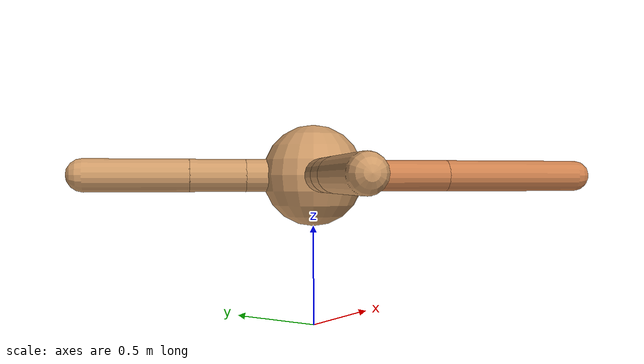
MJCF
<mujoco model="ant">
  <compiler angle="degree" coordinate="local" inertiafromgeom="true" />
  <option integrator="RK4" timestep="0.01" />
  <custom>
    <numeric data="0.0 0.0 0.55 1.0 0.0 0.0 0.0 0.0 1.0 0.0 -1.0 0.0 -1.0 0.0 1.0" name="init_qpos" />
  </custom>
  <default>
    <joint armature="1" damping="1" limited="true" />
    <geom conaffinity="0" condim="3" density="5.0" friction="1.5 0.1 0.1" margin="0.01" rgba="0.8 0.6 0.4 1" />
  </default>
  <worldbody>
    <body name="torso" pos="0 0 0.75">
      <geom name="torso_geom" pos="0 0 0" size="0.25" type="sphere" />

      <body name="front_left_leg" pos="0 0 0">
        <geom fromto="0.0 0.0 0.0 0.20687818402809485 0.20687818402809485 0.0" name="aux_1_geom" size="0.08" type="capsule" rgba=".8 .5 .3 1" />
        <body name="aux_1" pos="0.20687818402809485 0.20687818402809485 0.0">
          <joint axis="0 0 1" name="hip_1" pos="0.0 0.0 0.0" range="-40 40" type="hinge" />
          <geom fromto="0.0 0.0 0.0 0.2656178329364998 0.2656178329364998 0.0" name="left_leg_geom" size="0.08" type="capsule" rgba=".8 .5 .3 1" />
          <body pos="0.2656178329364998 0.2656178329364998 0.0" name="front_left_foot">
            <joint axis="-1 1 0" name="ankle_1" pos="0.0 0.0 0.0" range="30 100" type="hinge" />
            <geom fromto="0.0 0.0 0.0 0.3062102541376857 0.3062102541376857 0.0" name="left_ankle_geom" size="0.08" type="capsule" rgba=".8 .5 .3 1" />
          </body>
        </body>
      </body>
      <body name="front_right_leg" pos="0 0 0">
        <geom fromto="0.0 0.0 0.0 -0.23645885722649782 0.23645885722649782 0.0" name="aux_2_geom" size="0.08" type="capsule" />
        <body name="aux_2" pos="-0.23645885722649782 0.23645885722649782 0.0">
          <joint axis="0 0 1" name="hip_2" pos="0.0 0.0 0.0" range="-40 40" type="hinge" />
          <geom fromto="0.0 0.0 0.0 -0.18941682894886375 0.18941682894886375 0.0" name="right_leg_geom" size="0.08" type="capsule" />
          <body pos="-0.18941682894886375 0.18941682894886375 0.0" name="front_right_foot">
            <joint axis="1 1 0" name="ankle_2" pos="0.0 0.0 0.0" range="-100 -30" type="hinge" />
            <geom fromto="0.0 0.0 0.0 -0.3451601170844114 0.3451601170844114 0.0" name="right_ankle_geom" size="0.08" type="capsule" />
          </body>
        </body>
      </body>
      <body name="left_back_leg" pos="0 0 0">
        <geom fromto="0.0 0.0 0.0 -0.27688963789359433 -0.27688963789359433 0.0" name="aux_3_geom" size="0.08" type="capsule" />
        <body name="aux_3" pos="-0.27688963789359433 -0.27688963789359433 0.0">
          <joint axis="0 0 1" name="hip_3" pos="0.0 0.0 0.0" range="-40 40" type="hinge" />
          <geom fromto="0.0 0.0 0.0 -0.12729753202482938 -0.12729753202482938 0.0" name="back_leg_geom" size="0.08" type="capsule" />
          <body pos="-0.12729753202482938 -0.12729753202482938 0.0" name="left_back_foot">
            <joint axis="-1 1 0" name="ankle_3" pos="0.0 0.0 0.0" range="-100 -30" type="hinge" />
            <geom fromto="0.0 0.0 0.0 -0.40989370948301584 -0.40989370948301584 0.0" name="third_ankle_geom" size="0.08" type="capsule" />
          </body>
        </body>
      </body>
      <body name="right_back_leg" pos="0 0 0">
        <geom fromto="0.0 0.0 0.0 0.22442410855958253 -0.22442410855958253 0.0" name="aux_4_geom" size="0.08" type="capsule" rgba=".8 .5 .3 1" />
        <body name="aux_4" pos="0.22442410855958253 -0.22442410855958253 0.0">
          <joint axis="0 0 1" name="hip_4" pos="0.0 0.0 0.0" range="-40 40" type="hinge" />
          <geom fromto="0.0 0.0 0.0 0.2644186084021493 -0.2644186084021493 0.0" name="rightback_leg_geom" size="0.08" type="capsule" rgba=".8 .5 .3 1" />
          <body pos="0.2644186084021493 -0.2644186084021493 0.0" name="right_back_foot">
            <joint axis="1 1 0" name="ankle_4" pos="0.0 0.0 0.0" range="30 100" type="hinge" />
            <geom fromto="0.0 0.0 0.0 0.5049460389246389 -0.5049460389246389 0.0" name="fourth_ankle_geom" size="0.08" type="capsule" rgba=".8 .5 .3 1" />
          </body>
        </body>
      </body>
    </body>
  </worldbody>
  <actuator>
    <motor ctrllimited="true" ctrlrange="-1.0 1.0" joint="hip_4" gear="150" />
    <motor ctrllimited="true" ctrlrange="-1.0 1.0" joint="ankle_4" gear="150" />
    <motor ctrllimited="true" ctrlrange="-1.0 1.0" joint="hip_1" gear="150" />
    <motor ctrllimited="true" ctrlrange="-1.0 1.0" joint="ankle_1" gear="150" />
    <motor ctrllimited="true" ctrlrange="-1.0 1.0" joint="hip_2" gear="150" />
    <motor ctrllimited="true" ctrlrange="-1.0 1.0" joint="ankle_2" gear="150" />
    <motor ctrllimited="true" ctrlrange="-1.0 1.0" joint="hip_3" gear="150" />
    <motor ctrllimited="true" ctrlrange="-1.0 1.0" joint="ankle_3" gear="150" />
  </actuator>
</mujoco>
